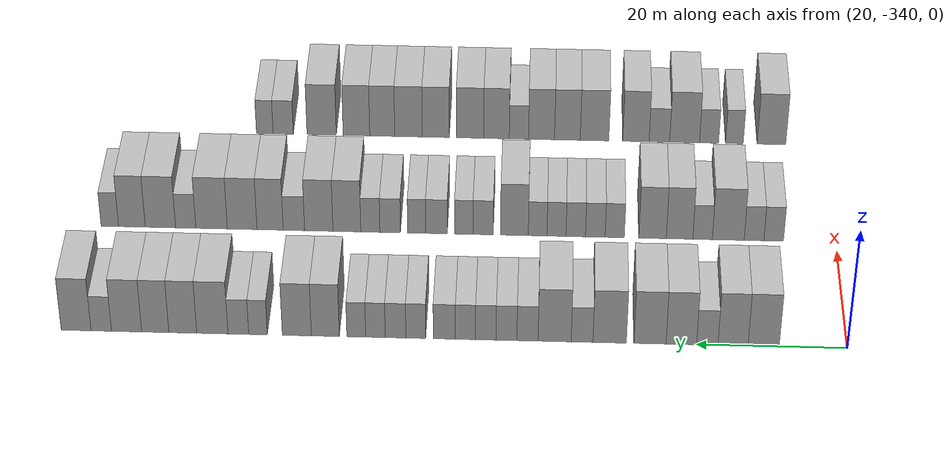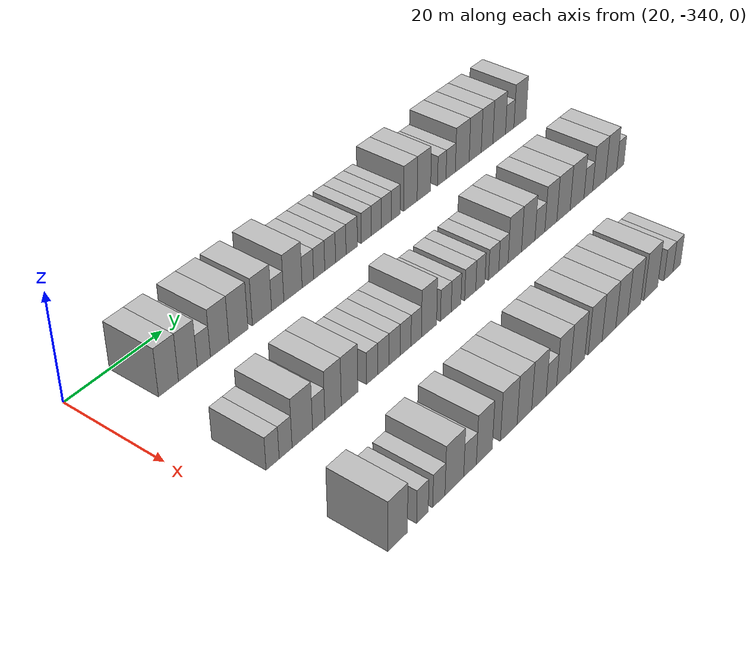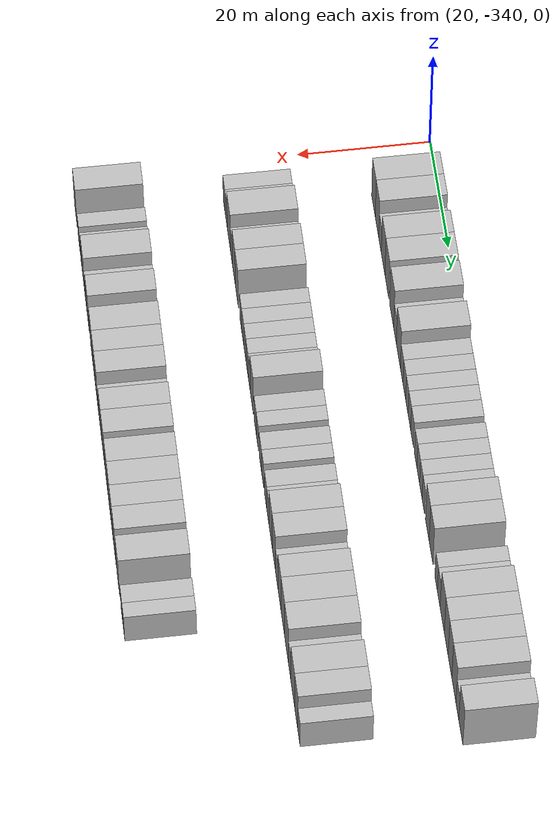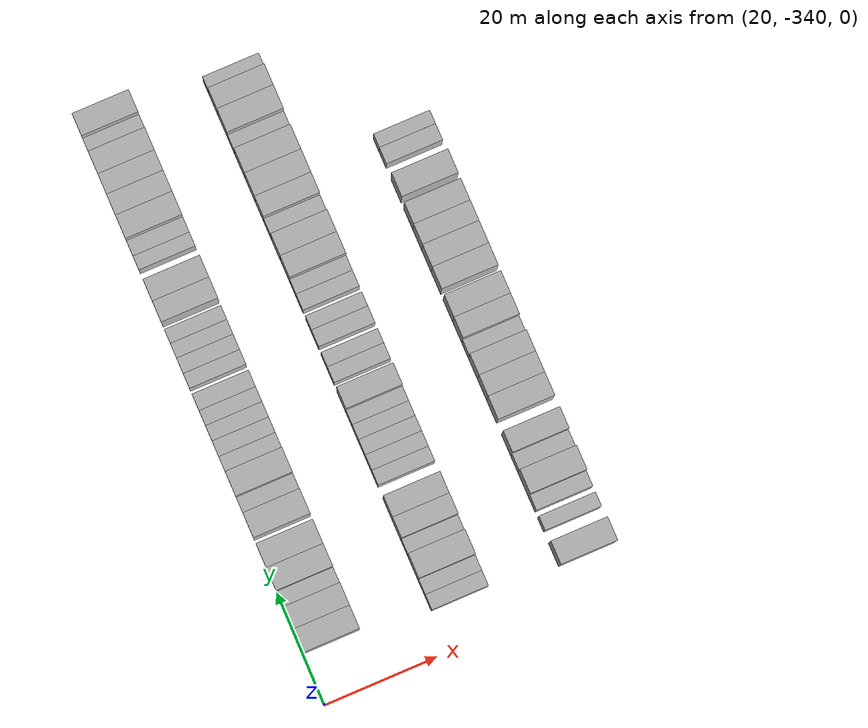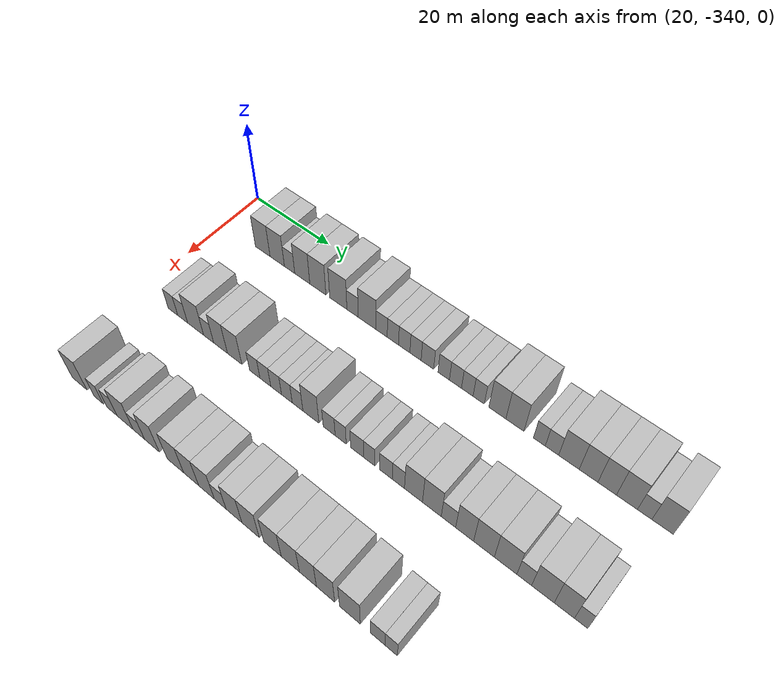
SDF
<sdf version="1.6">
 <world name="default">
  <model name="building_14">
   <static>1</static>
   <pose>25.0000 -328.9260 0 0.000000 0.000000 0.000000</pose>
   <link name="link">
    <pose>0 0 4.50 0 0 0</pose>
    <collision name="collision"><geometry><box><size>10.0000 4.1255 9.0000</size></box></geometry></collision>
    <visual name="visual">
     <cast_shadows>0</cast_shadows>
     <geometry><box><size>10.0000 4.1255 9.0000</size></box></geometry>
     <material>
      <script>
       <uri>model://HANNAS_wall/materials/scripts</uri>
       <uri>model://HANNAS_wall/materials/textures</uri>
       <name>vrc/HANNAS_wall</name>
      </script>
     </material>
    </visual>
   </link>
  </model>
  <model name="building_15">
   <static>1</static>
   <pose>25.0000 -324.8805 0 0.000000 0.000000 0.000000</pose>
   <link name="link">
    <pose>0 0 4.50 0 0 0</pose>
    <collision name="collision"><geometry><box><size>10.0000 3.9656 9.0000</size></box></geometry></collision>
    <visual name="visual">
     <cast_shadows>0</cast_shadows>
     <geometry><box><size>10.0000 3.9656 9.0000</size></box></geometry>
     <material>
      <script>
       <uri>model://HANNAS_wall/materials/scripts</uri>
       <uri>model://HANNAS_wall/materials/textures</uri>
       <name>vrc/HANNAS_wall</name>
      </script>
     </material>
    </visual>
   </link>
  </model>
  <model name="building_16">
   <static>1</static>
   <pose>25.0000 -321.4860 0 0.000000 0.000000 0.000000</pose>
   <link name="link">
    <pose>0 0 3.00 0 0 0</pose>
    <collision name="collision"><geometry><box><size>10.0000 2.8233 6.0000</size></box></geometry></collision>
    <visual name="visual">
     <cast_shadows>0</cast_shadows>
     <geometry><box><size>10.0000 2.8233 6.0000</size></box></geometry>
     <material>
      <script>
       <uri>model://HANNAS_wall/materials/scripts</uri>
       <uri>model://HANNAS_wall/materials/textures</uri>
       <name>vrc/HANNAS_wall</name>
      </script>
     </material>
    </visual>
   </link>
  </model>
  <model name="building_17">
   <static>1</static>
   <pose>25.0000 -318.0488 0 0.000000 0.000000 0.000000</pose>
   <link name="link">
    <pose>0 0 4.50 0 0 0</pose>
    <collision name="collision"><geometry><box><size>10.0000 4.0510 9.0000</size></box></geometry></collision>
    <visual name="visual">
     <cast_shadows>0</cast_shadows>
     <geometry><box><size>10.0000 4.0510 9.0000</size></box></geometry>
     <material>
      <script>
       <uri>model://HANNAS_wall/materials/scripts</uri>
       <uri>model://HANNAS_wall/materials/textures</uri>
       <name>vrc/HANNAS_wall</name>
      </script>
     </material>
    </visual>
   </link>
  </model>
  <model name="building_18">
   <static>1</static>
   <pose>25.0000 -313.8992 0 0.000000 0.000000 0.000000</pose>
   <link name="link">
    <pose>0 0 4.50 0 0 0</pose>
    <collision name="collision"><geometry><box><size>10.0000 4.2481 9.0000</size></box></geometry></collision>
    <visual name="visual">
     <cast_shadows>0</cast_shadows>
     <geometry><box><size>10.0000 4.2481 9.0000</size></box></geometry>
     <material>
      <script>
       <uri>model://HANNAS_wall/materials/scripts</uri>
       <uri>model://HANNAS_wall/materials/textures</uri>
       <name>vrc/HANNAS_wall</name>
      </script>
     </material>
    </visual>
   </link>
  </model>
  <model name="building_19">
   <static>1</static>
   <pose>25.0000 -308.5621 0 0.000000 0.000000 0.000000</pose>
   <link name="link">
    <pose>0 0 4.50 0 0 0</pose>
    <collision name="collision"><geometry><box><size>10.0000 4.4262 9.0000</size></box></geometry></collision>
    <visual name="visual">
     <cast_shadows>0</cast_shadows>
     <geometry><box><size>10.0000 4.4262 9.0000</size></box></geometry>
     <material>
      <script>
       <uri>model://HANNAS_wall/materials/scripts</uri>
       <uri>model://HANNAS_wall/materials/textures</uri>
       <name>vrc/HANNAS_wall</name>
      </script>
     </material>
    </visual>
   </link>
  </model>
  <model name="building_20">
   <static>1</static>
   <pose>25.0000 -304.9071 0 0.000000 0.000000 0.000000</pose>
   <link name="link">
    <pose>0 0 3.00 0 0 0</pose>
    <collision name="collision"><geometry><box><size>10.0000 2.8838 6.0000</size></box></geometry></collision>
    <visual name="visual">
     <cast_shadows>0</cast_shadows>
     <geometry><box><size>10.0000 2.8838 6.0000</size></box></geometry>
     <material>
      <script>
       <uri>model://HANNAS_wall/materials/scripts</uri>
       <uri>model://HANNAS_wall/materials/textures</uri>
       <name>vrc/HANNAS_wall</name>
      </script>
     </material>
    </visual>
   </link>
  </model>
  <model name="building_21">
   <static>1</static>
   <pose>25.0000 -301.2695 0 0.000000 0.000000 0.000000</pose>
   <link name="link">
    <pose>0 0 4.50 0 0 0</pose>
    <collision name="collision"><geometry><box><size>10.0000 4.3914 9.0000</size></box></geometry></collision>
    <visual name="visual">
     <cast_shadows>0</cast_shadows>
     <geometry><box><size>10.0000 4.3914 9.0000</size></box></geometry>
     <material>
      <script>
       <uri>model://HANNAS_wall/materials/scripts</uri>
       <uri>model://HANNAS_wall/materials/textures</uri>
       <name>vrc/HANNAS_wall</name>
      </script>
     </material>
    </visual>
   </link>
  </model>
  <model name="building_22">
   <static>1</static>
   <pose>25.0000 -297.6697 0 0.000000 0.000000 0.000000</pose>
   <link name="link">
    <pose>0 0 3.00 0 0 0</pose>
    <collision name="collision"><geometry><box><size>10.0000 2.8083 6.0000</size></box></geometry></collision>
    <visual name="visual">
     <cast_shadows>0</cast_shadows>
     <geometry><box><size>10.0000 2.8083 6.0000</size></box></geometry>
     <material>
      <script>
       <uri>model://HANNAS_wall/materials/scripts</uri>
       <uri>model://HANNAS_wall/materials/textures</uri>
       <name>vrc/HANNAS_wall</name>
      </script>
     </material>
    </visual>
   </link>
  </model>
  <model name="building_23">
   <static>1</static>
   <pose>25.0000 -294.8839 0 0.000000 0.000000 0.000000</pose>
   <link name="link">
    <pose>0 0 3.00 0 0 0</pose>
    <collision name="collision"><geometry><box><size>10.0000 2.7632 6.0000</size></box></geometry></collision>
    <visual name="visual">
     <cast_shadows>0</cast_shadows>
     <geometry><box><size>10.0000 2.7632 6.0000</size></box></geometry>
     <material>
      <script>
       <uri>model://HANNAS_wall/materials/scripts</uri>
       <uri>model://HANNAS_wall/materials/textures</uri>
       <name>vrc/HANNAS_wall</name>
      </script>
     </material>
    </visual>
   </link>
  </model>
  <model name="building_24">
   <static>1</static>
   <pose>25.0000 -292.1379 0 0.000000 0.000000 0.000000</pose>
   <link name="link">
    <pose>0 0 3.00 0 0 0</pose>
    <collision name="collision"><geometry><box><size>10.0000 2.7287 6.0000</size></box></geometry></collision>
    <visual name="visual">
     <cast_shadows>0</cast_shadows>
     <geometry><box><size>10.0000 2.7287 6.0000</size></box></geometry>
     <material>
      <script>
       <uri>model://HANNAS_wall/materials/scripts</uri>
       <uri>model://HANNAS_wall/materials/textures</uri>
       <name>vrc/HANNAS_wall</name>
      </script>
     </material>
    </visual>
   </link>
  </model>
  <model name="building_25">
   <static>1</static>
   <pose>25.0000 -289.4404 0 0.000000 0.000000 0.000000</pose>
   <link name="link">
    <pose>0 0 3.00 0 0 0</pose>
    <collision name="collision"><geometry><box><size>10.0000 2.6665 6.0000</size></box></geometry></collision>
    <visual name="visual">
     <cast_shadows>0</cast_shadows>
     <geometry><box><size>10.0000 2.6665 6.0000</size></box></geometry>
     <material>
      <script>
       <uri>model://HANNAS_wall/materials/scripts</uri>
       <uri>model://HANNAS_wall/materials/textures</uri>
       <name>vrc/HANNAS_wall</name>
      </script>
     </material>
    </visual>
   </link>
  </model>
  <model name="building_26">
   <static>1</static>
   <pose>25.0000 -286.6353 0 0.000000 0.000000 0.000000</pose>
   <link name="link">
    <pose>0 0 3.00 0 0 0</pose>
    <collision name="collision"><geometry><box><size>10.0000 2.9437 6.0000</size></box></geometry></collision>
    <visual name="visual">
     <cast_shadows>0</cast_shadows>
     <geometry><box><size>10.0000 2.9437 6.0000</size></box></geometry>
     <material>
      <script>
       <uri>model://HANNAS_wall/materials/scripts</uri>
       <uri>model://HANNAS_wall/materials/textures</uri>
       <name>vrc/HANNAS_wall</name>
      </script>
     </material>
    </visual>
   </link>
  </model>
  <model name="building_27">
   <static>1</static>
   <pose>25.0000 -282.8441 0 0.000000 0.000000 0.000000</pose>
   <link name="link">
    <pose>0 0 3.00 0 0 0</pose>
    <collision name="collision"><geometry><box><size>10.0000 2.6388 6.0000</size></box></geometry></collision>
    <visual name="visual">
     <cast_shadows>0</cast_shadows>
     <geometry><box><size>10.0000 2.6388 6.0000</size></box></geometry>
     <material>
      <script>
       <uri>model://HANNAS_wall/materials/scripts</uri>
       <uri>model://HANNAS_wall/materials/textures</uri>
       <name>vrc/HANNAS_wall</name>
      </script>
     </material>
    </visual>
   </link>
  </model>
  <model name="building_28">
   <static>1</static>
   <pose>25.0000 -280.1533 0 0.000000 0.000000 0.000000</pose>
   <link name="link">
    <pose>0 0 3.00 0 0 0</pose>
    <collision name="collision"><geometry><box><size>10.0000 2.7426 6.0000</size></box></geometry></collision>
    <visual name="visual">
     <cast_shadows>0</cast_shadows>
     <geometry><box><size>10.0000 2.7426 6.0000</size></box></geometry>
     <material>
      <script>
       <uri>model://HANNAS_wall/materials/scripts</uri>
       <uri>model://HANNAS_wall/materials/textures</uri>
       <name>vrc/HANNAS_wall</name>
      </script>
     </material>
    </visual>
   </link>
  </model>
  <model name="building_29">
   <static>1</static>
   <pose>25.0000 -277.4789 0 0.000000 0.000000 0.000000</pose>
   <link name="link">
    <pose>0 0 3.00 0 0 0</pose>
    <collision name="collision"><geometry><box><size>10.0000 2.6062 6.0000</size></box></geometry></collision>
    <visual name="visual">
     <cast_shadows>0</cast_shadows>
     <geometry><box><size>10.0000 2.6062 6.0000</size></box></geometry>
     <material>
      <script>
       <uri>model://HANNAS_wall/materials/scripts</uri>
       <uri>model://HANNAS_wall/materials/textures</uri>
       <name>vrc/HANNAS_wall</name>
      </script>
     </material>
    </visual>
   </link>
  </model>
  <model name="building_30">
   <static>1</static>
   <pose>25.0000 -274.9261 0 0.000000 0.000000 0.000000</pose>
   <link name="link">
    <pose>0 0 3.00 0 0 0</pose>
    <collision name="collision"><geometry><box><size>10.0000 2.4993 6.0000</size></box></geometry></collision>
    <visual name="visual">
     <cast_shadows>0</cast_shadows>
     <geometry><box><size>10.0000 2.4993 6.0000</size></box></geometry>
     <material>
      <script>
       <uri>model://HANNAS_wall/materials/scripts</uri>
       <uri>model://HANNAS_wall/materials/textures</uri>
       <name>vrc/HANNAS_wall</name>
      </script>
     </material>
    </visual>
   </link>
  </model>
  <model name="building_31">
   <static>1</static>
   <pose>25.0000 -270.8141 0 0.000000 0.000000 0.000000</pose>
   <link name="link">
    <pose>0 0 4.50 0 0 0</pose>
    <collision name="collision"><geometry><box><size>10.0000 3.7247 9.0000</size></box></geometry></collision>
    <visual name="visual">
     <cast_shadows>0</cast_shadows>
     <geometry><box><size>10.0000 3.7247 9.0000</size></box></geometry>
     <material>
      <script>
       <uri>model://HANNAS_wall/materials/scripts</uri>
       <uri>model://HANNAS_wall/materials/textures</uri>
       <name>vrc/HANNAS_wall</name>
      </script>
     </material>
    </visual>
   </link>
  </model>
  <model name="building_32">
   <static>1</static>
   <pose>25.0000 -267.0183 0 0.000000 0.000000 0.000000</pose>
   <link name="link">
    <pose>0 0 4.50 0 0 0</pose>
    <collision name="collision"><geometry><box><size>10.0000 3.8670 9.0000</size></box></geometry></collision>
    <visual name="visual">
     <cast_shadows>0</cast_shadows>
     <geometry><box><size>10.0000 3.8670 9.0000</size></box></geometry>
     <material>
      <script>
       <uri>model://HANNAS_wall/materials/scripts</uri>
       <uri>model://HANNAS_wall/materials/textures</uri>
       <name>vrc/HANNAS_wall</name>
      </script>
     </material>
    </visual>
   </link>
  </model>
  <model name="building_33">
   <static>1</static>
   <pose>25.0000 -261.8424 0 0.000000 0.000000 0.000000</pose>
   <link name="link">
    <pose>0 0 3.00 0 0 0</pose>
    <collision name="collision"><geometry><box><size>10.0000 2.4848 6.0000</size></box></geometry></collision>
    <visual name="visual">
     <cast_shadows>0</cast_shadows>
     <geometry><box><size>10.0000 2.4848 6.0000</size></box></geometry>
     <material>
      <script>
       <uri>model://HANNAS_wall/materials/scripts</uri>
       <uri>model://HANNAS_wall/materials/textures</uri>
       <name>vrc/HANNAS_wall</name>
      </script>
     </material>
    </visual>
   </link>
  </model>
  <model name="building_34">
   <static>1</static>
   <pose>25.0000 -259.2197 0 0.000000 0.000000 0.000000</pose>
   <link name="link">
    <pose>0 0 3.00 0 0 0</pose>
    <collision name="collision"><geometry><box><size>10.0000 2.7606 6.0000</size></box></geometry></collision>
    <visual name="visual">
     <cast_shadows>0</cast_shadows>
     <geometry><box><size>10.0000 2.7606 6.0000</size></box></geometry>
     <material>
      <script>
       <uri>model://HANNAS_wall/materials/scripts</uri>
       <uri>model://HANNAS_wall/materials/textures</uri>
       <name>vrc/HANNAS_wall</name>
      </script>
     </material>
    </visual>
   </link>
  </model>
  <model name="building_35">
   <static>1</static>
   <pose>25.0000 -255.7530 0 0.000000 0.000000 0.000000</pose>
   <link name="link">
    <pose>0 0 4.50 0 0 0</pose>
    <collision name="collision"><geometry><box><size>10.0000 4.1728 9.0000</size></box></geometry></collision>
    <visual name="visual">
     <cast_shadows>0</cast_shadows>
     <geometry><box><size>10.0000 4.1728 9.0000</size></box></geometry>
     <material>
      <script>
       <uri>model://HANNAS_wall/materials/scripts</uri>
       <uri>model://HANNAS_wall/materials/textures</uri>
       <name>vrc/HANNAS_wall</name>
      </script>
     </material>
    </visual>
   </link>
  </model>
  <model name="building_36">
   <static>1</static>
   <pose>25.0000 -251.8051 0 0.000000 0.000000 0.000000</pose>
   <link name="link">
    <pose>0 0 4.50 0 0 0</pose>
    <collision name="collision"><geometry><box><size>10.0000 3.7230 9.0000</size></box></geometry></collision>
    <visual name="visual">
     <cast_shadows>0</cast_shadows>
     <geometry><box><size>10.0000 3.7230 9.0000</size></box></geometry>
     <material>
      <script>
       <uri>model://HANNAS_wall/materials/scripts</uri>
       <uri>model://HANNAS_wall/materials/textures</uri>
       <name>vrc/HANNAS_wall</name>
      </script>
     </material>
    </visual>
   </link>
  </model>
  <model name="building_37">
   <static>1</static>
   <pose>25.0000 -248.1258 0 0.000000 0.000000 0.000000</pose>
   <link name="link">
    <pose>0 0 4.50 0 0 0</pose>
    <collision name="collision"><geometry><box><size>10.0000 3.6355 9.0000</size></box></geometry></collision>
    <visual name="visual">
     <cast_shadows>0</cast_shadows>
     <geometry><box><size>10.0000 3.6355 9.0000</size></box></geometry>
     <material>
      <script>
       <uri>model://HANNAS_wall/materials/scripts</uri>
       <uri>model://HANNAS_wall/materials/textures</uri>
       <name>vrc/HANNAS_wall</name>
      </script>
     </material>
    </visual>
   </link>
  </model>
  <model name="building_38">
   <static>1</static>
   <pose>25.0000 -244.2917 0 0.000000 0.000000 0.000000</pose>
   <link name="link">
    <pose>0 0 4.50 0 0 0</pose>
    <collision name="collision"><geometry><box><size>10.0000 4.0326 9.0000</size></box></geometry></collision>
    <visual name="visual">
     <cast_shadows>0</cast_shadows>
     <geometry><box><size>10.0000 4.0326 9.0000</size></box></geometry>
     <material>
      <script>
       <uri>model://HANNAS_wall/materials/scripts</uri>
       <uri>model://HANNAS_wall/materials/textures</uri>
       <name>vrc/HANNAS_wall</name>
      </script>
     </material>
    </visual>
   </link>
  </model>
  <model name="building_39">
   <static>1</static>
   <pose>25.0000 -240.9089 0 0.000000 0.000000 0.000000</pose>
   <link name="link">
    <pose>0 0 3.00 0 0 0</pose>
    <collision name="collision"><geometry><box><size>10.0000 2.7330 6.0000</size></box></geometry></collision>
    <visual name="visual">
     <cast_shadows>0</cast_shadows>
     <geometry><box><size>10.0000 2.7330 6.0000</size></box></geometry>
     <material>
      <script>
       <uri>model://HANNAS_wall/materials/scripts</uri>
       <uri>model://HANNAS_wall/materials/textures</uri>
       <name>vrc/HANNAS_wall</name>
      </script>
     </material>
    </visual>
   </link>
  </model>
  <model name="building_40">
   <static>1</static>
   <pose>25.0000 -237.5478 0 0.000000 0.000000 0.000000</pose>
   <link name="link">
    <pose>0 0 4.50 0 0 0</pose>
    <collision name="collision"><geometry><box><size>10.0000 3.9893 9.0000</size></box></geometry></collision>
    <visual name="visual">
     <cast_shadows>0</cast_shadows>
     <geometry><box><size>10.0000 3.9893 9.0000</size></box></geometry>
     <material>
      <script>
       <uri>model://HANNAS_wall/materials/scripts</uri>
       <uri>model://HANNAS_wall/materials/textures</uri>
       <name>vrc/HANNAS_wall</name>
      </script>
     </material>
    </visual>
   </link>
  </model>
  <model name="building_210">
   <static>1</static>
   <pose>47.0000 -331.4357 0 0.000000 0.000000 0.000000</pose>
   <link name="link">
    <pose>0 0 3.00 0 0 0</pose>
    <collision name="collision"><geometry><box><size>10.0000 2.7094 6.0000</size></box></geometry></collision>
    <visual name="visual">
     <cast_shadows>0</cast_shadows>
     <geometry><box><size>10.0000 2.7094 6.0000</size></box></geometry>
     <material>
      <script>
       <uri>model://HANNAS_wall/materials/scripts</uri>
       <uri>model://HANNAS_wall/materials/textures</uri>
       <name>vrc/HANNAS_wall</name>
      </script>
     </material>
    </visual>
   </link>
  </model>
  <model name="building_211">
   <static>1</static>
   <pose>47.0000 -328.7173 0 0.000000 0.000000 0.000000</pose>
   <link name="link">
    <pose>0 0 3.00 0 0 0</pose>
    <collision name="collision"><geometry><box><size>10.0000 2.7276 6.0000</size></box></geometry></collision>
    <visual name="visual">
     <cast_shadows>0</cast_shadows>
     <geometry><box><size>10.0000 2.7276 6.0000</size></box></geometry>
     <material>
      <script>
       <uri>model://HANNAS_wall/materials/scripts</uri>
       <uri>model://HANNAS_wall/materials/textures</uri>
       <name>vrc/HANNAS_wall</name>
      </script>
     </material>
    </visual>
   </link>
  </model>
  <model name="building_212">
   <static>1</static>
   <pose>47.0000 -325.1502 0 0.000000 0.000000 0.000000</pose>
   <link name="link">
    <pose>0 0 4.50 0 0 0</pose>
    <collision name="collision"><geometry><box><size>10.0000 4.4065 9.0000</size></box></geometry></collision>
    <visual name="visual">
     <cast_shadows>0</cast_shadows>
     <geometry><box><size>10.0000 4.4065 9.0000</size></box></geometry>
     <material>
      <script>
       <uri>model://HANNAS_wall/materials/scripts</uri>
       <uri>model://HANNAS_wall/materials/textures</uri>
       <name>vrc/HANNAS_wall</name>
      </script>
     </material>
    </visual>
   </link>
  </model>
  <model name="building_213">
   <static>1</static>
   <pose>47.0000 -321.5990 0 0.000000 0.000000 0.000000</pose>
   <link name="link">
    <pose>0 0 3.00 0 0 0</pose>
    <collision name="collision"><geometry><box><size>10.0000 2.6959 6.0000</size></box></geometry></collision>
    <visual name="visual">
     <cast_shadows>0</cast_shadows>
     <geometry><box><size>10.0000 2.6959 6.0000</size></box></geometry>
     <material>
      <script>
       <uri>model://HANNAS_wall/materials/scripts</uri>
       <uri>model://HANNAS_wall/materials/textures</uri>
       <name>vrc/HANNAS_wall</name>
      </script>
     </material>
    </visual>
   </link>
  </model>
  <model name="building_214">
   <static>1</static>
   <pose>47.0000 -318.4127 0 0.000000 0.000000 0.000000</pose>
   <link name="link">
    <pose>0 0 4.50 0 0 0</pose>
    <collision name="collision"><geometry><box><size>10.0000 3.6765 9.0000</size></box></geometry></collision>
    <visual name="visual">
     <cast_shadows>0</cast_shadows>
     <geometry><box><size>10.0000 3.6765 9.0000</size></box></geometry>
     <material>
      <script>
       <uri>model://HANNAS_wall/materials/scripts</uri>
       <uri>model://HANNAS_wall/materials/textures</uri>
       <name>vrc/HANNAS_wall</name>
      </script>
     </material>
    </visual>
   </link>
  </model>
  <model name="building_215">
   <static>1</static>
   <pose>47.0000 -314.6747 0 0.000000 0.000000 0.000000</pose>
   <link name="link">
    <pose>0 0 4.50 0 0 0</pose>
    <collision name="collision"><geometry><box><size>10.0000 3.7995 9.0000</size></box></geometry></collision>
    <visual name="visual">
     <cast_shadows>0</cast_shadows>
     <geometry><box><size>10.0000 3.7995 9.0000</size></box></geometry>
     <material>
      <script>
       <uri>model://HANNAS_wall/materials/scripts</uri>
       <uri>model://HANNAS_wall/materials/textures</uri>
       <name>vrc/HANNAS_wall</name>
      </script>
     </material>
    </visual>
   </link>
  </model>
  <model name="building_216">
   <static>1</static>
   <pose>47.0000 -309.4443 0 0.000000 0.000000 0.000000</pose>
   <link name="link">
    <pose>0 0 3.00 0 0 0</pose>
    <collision name="collision"><geometry><box><size>10.0000 2.6614 6.0000</size></box></geometry></collision>
    <visual name="visual">
     <cast_shadows>0</cast_shadows>
     <geometry><box><size>10.0000 2.6614 6.0000</size></box></geometry>
     <material>
      <script>
       <uri>model://HANNAS_wall/materials/scripts</uri>
       <uri>model://HANNAS_wall/materials/textures</uri>
       <name>vrc/HANNAS_wall</name>
      </script>
     </material>
    </visual>
   </link>
  </model>
  <model name="building_217">
   <static>1</static>
   <pose>47.0000 -306.7528 0 0.000000 0.000000 0.000000</pose>
   <link name="link">
    <pose>0 0 3.00 0 0 0</pose>
    <collision name="collision"><geometry><box><size>10.0000 2.7215 6.0000</size></box></geometry></collision>
    <visual name="visual">
     <cast_shadows>0</cast_shadows>
     <geometry><box><size>10.0000 2.7215 6.0000</size></box></geometry>
     <material>
      <script>
       <uri>model://HANNAS_wall/materials/scripts</uri>
       <uri>model://HANNAS_wall/materials/textures</uri>
       <name>vrc/HANNAS_wall</name>
      </script>
     </material>
    </visual>
   </link>
  </model>
  <model name="building_218">
   <static>1</static>
   <pose>47.0000 -304.0382 0 0.000000 0.000000 0.000000</pose>
   <link name="link">
    <pose>0 0 3.00 0 0 0</pose>
    <collision name="collision"><geometry><box><size>10.0000 2.7077 6.0000</size></box></geometry></collision>
    <visual name="visual">
     <cast_shadows>0</cast_shadows>
     <geometry><box><size>10.0000 2.7077 6.0000</size></box></geometry>
     <material>
      <script>
       <uri>model://HANNAS_wall/materials/scripts</uri>
       <uri>model://HANNAS_wall/materials/textures</uri>
       <name>vrc/HANNAS_wall</name>
      </script>
     </material>
    </visual>
   </link>
  </model>
  <model name="building_219">
   <static>1</static>
   <pose>47.0000 -301.3656 0 0.000000 0.000000 0.000000</pose>
   <link name="link">
    <pose>0 0 3.00 0 0 0</pose>
    <collision name="collision"><geometry><box><size>10.0000 2.6374 6.0000</size></box></geometry></collision>
    <visual name="visual">
     <cast_shadows>0</cast_shadows>
     <geometry><box><size>10.0000 2.6374 6.0000</size></box></geometry>
     <material>
      <script>
       <uri>model://HANNAS_wall/materials/scripts</uri>
       <uri>model://HANNAS_wall/materials/textures</uri>
       <name>vrc/HANNAS_wall</name>
      </script>
     </material>
    </visual>
   </link>
  </model>
  <model name="building_220">
   <static>1</static>
   <pose>47.0000 -298.7498 0 0.000000 0.000000 0.000000</pose>
   <link name="link">
    <pose>0 0 3.00 0 0 0</pose>
    <collision name="collision"><geometry><box><size>10.0000 2.5943 6.0000</size></box></geometry></collision>
    <visual name="visual">
     <cast_shadows>0</cast_shadows>
     <geometry><box><size>10.0000 2.5943 6.0000</size></box></geometry>
     <material>
      <script>
       <uri>model://HANNAS_wall/materials/scripts</uri>
       <uri>model://HANNAS_wall/materials/textures</uri>
       <name>vrc/HANNAS_wall</name>
      </script>
     </material>
    </visual>
   </link>
  </model>
  <model name="building_221">
   <static>1</static>
   <pose>47.0000 -295.5214 0 0.000000 0.000000 0.000000</pose>
   <link name="link">
    <pose>0 0 4.50 0 0 0</pose>
    <collision name="collision"><geometry><box><size>10.0000 3.8626 9.0000</size></box></geometry></collision>
    <visual name="visual">
     <cast_shadows>0</cast_shadows>
     <geometry><box><size>10.0000 3.8626 9.0000</size></box></geometry>
     <material>
      <script>
       <uri>model://HANNAS_wall/materials/scripts</uri>
       <uri>model://HANNAS_wall/materials/textures</uri>
       <name>vrc/HANNAS_wall</name>
      </script>
     </material>
    </visual>
   </link>
  </model>
  <model name="building_222">
   <static>1</static>
   <pose>47.0000 -291.1821 0 0.000000 0.000000 0.000000</pose>
   <link name="link">
    <pose>0 0 3.00 0 0 0</pose>
    <collision name="collision"><geometry><box><size>10.0000 2.8158 6.0000</size></box></geometry></collision>
    <visual name="visual">
     <cast_shadows>0</cast_shadows>
     <geometry><box><size>10.0000 2.8158 6.0000</size></box></geometry>
     <material>
      <script>
       <uri>model://HANNAS_wall/materials/scripts</uri>
       <uri>model://HANNAS_wall/materials/textures</uri>
       <name>vrc/HANNAS_wall</name>
      </script>
     </material>
    </visual>
   </link>
  </model>
  <model name="building_223">
   <static>1</static>
   <pose>47.0000 -288.4922 0 0.000000 0.000000 0.000000</pose>
   <link name="link">
    <pose>0 0 3.00 0 0 0</pose>
    <collision name="collision"><geometry><box><size>10.0000 2.5641 6.0000</size></box></geometry></collision>
    <visual name="visual">
     <cast_shadows>0</cast_shadows>
     <geometry><box><size>10.0000 2.5641 6.0000</size></box></geometry>
     <material>
      <script>
       <uri>model://HANNAS_wall/materials/scripts</uri>
       <uri>model://HANNAS_wall/materials/textures</uri>
       <name>vrc/HANNAS_wall</name>
      </script>
     </material>
    </visual>
   </link>
  </model>
  <model name="building_224">
   <static>1</static>
   <pose>47.0000 -284.7108 0 0.000000 0.000000 0.000000</pose>
   <link name="link">
    <pose>0 0 3.00 0 0 0</pose>
    <collision name="collision"><geometry><box><size>10.0000 2.9986 6.0000</size></box></geometry></collision>
    <visual name="visual">
     <cast_shadows>0</cast_shadows>
     <geometry><box><size>10.0000 2.9986 6.0000</size></box></geometry>
     <material>
      <script>
       <uri>model://HANNAS_wall/materials/scripts</uri>
       <uri>model://HANNAS_wall/materials/textures</uri>
       <name>vrc/HANNAS_wall</name>
      </script>
     </material>
    </visual>
   </link>
  </model>
  <model name="building_225">
   <static>1</static>
   <pose>47.0000 -281.9559 0 0.000000 0.000000 0.000000</pose>
   <link name="link">
    <pose>0 0 3.00 0 0 0</pose>
    <collision name="collision"><geometry><box><size>10.0000 2.5112 6.0000</size></box></geometry></collision>
    <visual name="visual">
     <cast_shadows>0</cast_shadows>
     <geometry><box><size>10.0000 2.5112 6.0000</size></box></geometry>
     <material>
      <script>
       <uri>model://HANNAS_wall/materials/scripts</uri>
       <uri>model://HANNAS_wall/materials/textures</uri>
       <name>vrc/HANNAS_wall</name>
      </script>
     </material>
    </visual>
   </link>
  </model>
  <model name="building_226">
   <static>1</static>
   <pose>47.0000 -278.2670 0 0.000000 0.000000 0.000000</pose>
   <link name="link">
    <pose>0 0 3.00 0 0 0</pose>
    <collision name="collision"><geometry><box><size>10.0000 2.8667 6.0000</size></box></geometry></collision>
    <visual name="visual">
     <cast_shadows>0</cast_shadows>
     <geometry><box><size>10.0000 2.8667 6.0000</size></box></geometry>
     <material>
      <script>
       <uri>model://HANNAS_wall/materials/scripts</uri>
       <uri>model://HANNAS_wall/materials/textures</uri>
       <name>vrc/HANNAS_wall</name>
      </script>
     </material>
    </visual>
   </link>
  </model>
  <model name="building_227">
   <static>1</static>
   <pose>47.0000 -275.5086 0 0.000000 0.000000 0.000000</pose>
   <link name="link">
    <pose>0 0 3.00 0 0 0</pose>
    <collision name="collision"><geometry><box><size>10.0000 2.6500 6.0000</size></box></geometry></collision>
    <visual name="visual">
     <cast_shadows>0</cast_shadows>
     <geometry><box><size>10.0000 2.6500 6.0000</size></box></geometry>
     <material>
      <script>
       <uri>model://HANNAS_wall/materials/scripts</uri>
       <uri>model://HANNAS_wall/materials/textures</uri>
       <name>vrc/HANNAS_wall</name>
      </script>
     </material>
    </visual>
   </link>
  </model>
  <model name="building_228">
   <static>1</static>
   <pose>47.0000 -272.2478 0 0.000000 0.000000 0.000000</pose>
   <link name="link">
    <pose>0 0 4.50 0 0 0</pose>
    <collision name="collision"><geometry><box><size>10.0000 3.8716 9.0000</size></box></geometry></collision>
    <visual name="visual">
     <cast_shadows>0</cast_shadows>
     <geometry><box><size>10.0000 3.8716 9.0000</size></box></geometry>
     <material>
      <script>
       <uri>model://HANNAS_wall/materials/scripts</uri>
       <uri>model://HANNAS_wall/materials/textures</uri>
       <name>vrc/HANNAS_wall</name>
      </script>
     </material>
    </visual>
   </link>
  </model>
  <model name="building_229">
   <static>1</static>
   <pose>47.0000 -268.3368 0 0.000000 0.000000 0.000000</pose>
   <link name="link">
    <pose>0 0 4.50 0 0 0</pose>
    <collision name="collision"><geometry><box><size>10.0000 3.9504 9.0000</size></box></geometry></collision>
    <visual name="visual">
     <cast_shadows>0</cast_shadows>
     <geometry><box><size>10.0000 3.9504 9.0000</size></box></geometry>
     <material>
      <script>
       <uri>model://HANNAS_wall/materials/scripts</uri>
       <uri>model://HANNAS_wall/materials/textures</uri>
       <name>vrc/HANNAS_wall</name>
      </script>
     </material>
    </visual>
   </link>
  </model>
  <model name="building_230">
   <static>1</static>
   <pose>47.0000 -264.8716 0 0.000000 0.000000 0.000000</pose>
   <link name="link">
    <pose>0 0 3.00 0 0 0</pose>
    <collision name="collision"><geometry><box><size>10.0000 2.9799 6.0000</size></box></geometry></collision>
    <visual name="visual">
     <cast_shadows>0</cast_shadows>
     <geometry><box><size>10.0000 2.9799 6.0000</size></box></geometry>
     <material>
      <script>
       <uri>model://HANNAS_wall/materials/scripts</uri>
       <uri>model://HANNAS_wall/materials/textures</uri>
       <name>vrc/HANNAS_wall</name>
      </script>
     </material>
    </visual>
   </link>
  </model>
  <model name="building_231">
   <static>1</static>
   <pose>47.0000 -261.5500 0 0.000000 0.000000 0.000000</pose>
   <link name="link">
    <pose>0 0 4.50 0 0 0</pose>
    <collision name="collision"><geometry><box><size>10.0000 3.6633 9.0000</size></box></geometry></collision>
    <visual name="visual">
     <cast_shadows>0</cast_shadows>
     <geometry><box><size>10.0000 3.6633 9.0000</size></box></geometry>
     <material>
      <script>
       <uri>model://HANNAS_wall/materials/scripts</uri>
       <uri>model://HANNAS_wall/materials/textures</uri>
       <name>vrc/HANNAS_wall</name>
      </script>
     </material>
    </visual>
   </link>
  </model>
  <model name="building_232">
   <static>1</static>
   <pose>47.0000 -257.6503 0 0.000000 0.000000 0.000000</pose>
   <link name="link">
    <pose>0 0 4.50 0 0 0</pose>
    <collision name="collision"><geometry><box><size>10.0000 4.1362 9.0000</size></box></geometry></collision>
    <visual name="visual">
     <cast_shadows>0</cast_shadows>
     <geometry><box><size>10.0000 4.1362 9.0000</size></box></geometry>
     <material>
      <script>
       <uri>model://HANNAS_wall/materials/scripts</uri>
       <uri>model://HANNAS_wall/materials/textures</uri>
       <name>vrc/HANNAS_wall</name>
      </script>
     </material>
    </visual>
   </link>
  </model>
  <model name="building_233">
   <static>1</static>
   <pose>47.0000 -253.3803 0 0.000000 0.000000 0.000000</pose>
   <link name="link">
    <pose>0 0 4.50 0 0 0</pose>
    <collision name="collision"><geometry><box><size>10.0000 4.4040 9.0000</size></box></geometry></collision>
    <visual name="visual">
     <cast_shadows>0</cast_shadows>
     <geometry><box><size>10.0000 4.4040 9.0000</size></box></geometry>
     <material>
      <script>
       <uri>model://HANNAS_wall/materials/scripts</uri>
       <uri>model://HANNAS_wall/materials/textures</uri>
       <name>vrc/HANNAS_wall</name>
      </script>
     </material>
    </visual>
   </link>
  </model>
  <model name="building_234">
   <static>1</static>
   <pose>47.0000 -249.7667 0 0.000000 0.000000 0.000000</pose>
   <link name="link">
    <pose>0 0 3.00 0 0 0</pose>
    <collision name="collision"><geometry><box><size>10.0000 2.8231 6.0000</size></box></geometry></collision>
    <visual name="visual">
     <cast_shadows>0</cast_shadows>
     <geometry><box><size>10.0000 2.8231 6.0000</size></box></geometry>
     <material>
      <script>
       <uri>model://HANNAS_wall/materials/scripts</uri>
       <uri>model://HANNAS_wall/materials/textures</uri>
       <name>vrc/HANNAS_wall</name>
      </script>
     </material>
    </visual>
   </link>
  </model>
  <model name="building_235">
   <static>1</static>
   <pose>47.0000 -246.2337 0 0.000000 0.000000 0.000000</pose>
   <link name="link">
    <pose>0 0 4.50 0 0 0</pose>
    <collision name="collision"><geometry><box><size>10.0000 4.2429 9.0000</size></box></geometry></collision>
    <visual name="visual">
     <cast_shadows>0</cast_shadows>
     <geometry><box><size>10.0000 4.2429 9.0000</size></box></geometry>
     <material>
      <script>
       <uri>model://HANNAS_wall/materials/scripts</uri>
       <uri>model://HANNAS_wall/materials/textures</uri>
       <name>vrc/HANNAS_wall</name>
      </script>
     </material>
    </visual>
   </link>
  </model>
  <model name="building_236">
   <static>1</static>
   <pose>47.0000 -242.2460 0 0.000000 0.000000 0.000000</pose>
   <link name="link">
    <pose>0 0 4.50 0 0 0</pose>
    <collision name="collision"><geometry><box><size>10.0000 3.7327 9.0000</size></box></geometry></collision>
    <visual name="visual">
     <cast_shadows>0</cast_shadows>
     <geometry><box><size>10.0000 3.7327 9.0000</size></box></geometry>
     <material>
      <script>
       <uri>model://HANNAS_wall/materials/scripts</uri>
       <uri>model://HANNAS_wall/materials/textures</uri>
       <name>vrc/HANNAS_wall</name>
      </script>
     </material>
    </visual>
   </link>
  </model>
  <model name="building_237">
   <static>1</static>
   <pose>47.0000 -239.1651 0 0.000000 0.000000 0.000000</pose>
   <link name="link">
    <pose>0 0 3.00 0 0 0</pose>
    <collision name="collision"><geometry><box><size>10.0000 2.4291 6.0000</size></box></geometry></collision>
    <visual name="visual">
     <cast_shadows>0</cast_shadows>
     <geometry><box><size>10.0000 2.4291 6.0000</size></box></geometry>
     <material>
      <script>
       <uri>model://HANNAS_wall/materials/scripts</uri>
       <uri>model://HANNAS_wall/materials/textures</uri>
       <name>vrc/HANNAS_wall</name>
      </script>
     </material>
    </visual>
   </link>
  </model>
  <model name="building_397">
   <static>1</static>
   <pose>69.0000 -332.2826 0 0.000000 0.000000 0.000000</pose>
   <link name="link">
    <pose>0 0 4.50 0 0 0</pose>
    <collision name="collision"><geometry><box><size>10.0000 4.1308 9.0000</size></box></geometry></collision>
    <visual name="visual">
     <cast_shadows>0</cast_shadows>
     <geometry><box><size>10.0000 4.1308 9.0000</size></box></geometry>
     <material>
      <script>
       <uri>model://HANNAS_wall/materials/scripts</uri>
       <uri>model://HANNAS_wall/materials/textures</uri>
       <name>vrc/HANNAS_wall</name>
      </script>
     </material>
    </visual>
   </link>
  </model>
  <model name="building_398">
   <static>1</static>
   <pose>69.0000 -326.9394 0 0.000000 0.000000 0.000000</pose>
   <link name="link">
    <pose>0 0 3.00 0 0 0</pose>
    <collision name="collision"><geometry><box><size>10.0000 2.5555 6.0000</size></box></geometry></collision>
    <visual name="visual">
     <cast_shadows>0</cast_shadows>
     <geometry><box><size>10.0000 2.5555 6.0000</size></box></geometry>
     <material>
      <script>
       <uri>model://HANNAS_wall/materials/scripts</uri>
       <uri>model://HANNAS_wall/materials/textures</uri>
       <name>vrc/HANNAS_wall</name>
      </script>
     </material>
    </visual>
   </link>
  </model>
  <model name="building_399">
   <static>1</static>
   <pose>69.0000 -323.2837 0 0.000000 0.000000 0.000000</pose>
   <link name="link">
    <pose>0 0 3.00 0 0 0</pose>
    <collision name="collision"><geometry><box><size>10.0000 2.7557 6.0000</size></box></geometry></collision>
    <visual name="visual">
     <cast_shadows>0</cast_shadows>
     <geometry><box><size>10.0000 2.7557 6.0000</size></box></geometry>
     <material>
      <script>
       <uri>model://HANNAS_wall/materials/scripts</uri>
       <uri>model://HANNAS_wall/materials/textures</uri>
       <name>vrc/HANNAS_wall</name>
      </script>
     </material>
    </visual>
   </link>
  </model>
  <model name="building_400">
   <static>1</static>
   <pose>69.0000 -319.7501 0 0.000000 0.000000 0.000000</pose>
   <link name="link">
    <pose>0 0 4.50 0 0 0</pose>
    <collision name="collision"><geometry><box><size>10.0000 4.3115 9.0000</size></box></geometry></collision>
    <visual name="visual">
     <cast_shadows>0</cast_shadows>
     <geometry><box><size>10.0000 4.3115 9.0000</size></box></geometry>
     <material>
      <script>
       <uri>model://HANNAS_wall/materials/scripts</uri>
       <uri>model://HANNAS_wall/materials/textures</uri>
       <name>vrc/HANNAS_wall</name>
      </script>
     </material>
    </visual>
   </link>
  </model>
  <model name="building_401">
   <static>1</static>
   <pose>69.0000 -316.1072 0 0.000000 0.000000 0.000000</pose>
   <link name="link">
    <pose>0 0 3.00 0 0 0</pose>
    <collision name="collision"><geometry><box><size>10.0000 2.9743 6.0000</size></box></geometry></collision>
    <visual name="visual">
     <cast_shadows>0</cast_shadows>
     <geometry><box><size>10.0000 2.9743 6.0000</size></box></geometry>
     <material>
      <script>
       <uri>model://HANNAS_wall/materials/scripts</uri>
       <uri>model://HANNAS_wall/materials/textures</uri>
       <name>vrc/HANNAS_wall</name>
      </script>
     </material>
    </visual>
   </link>
  </model>
  <model name="building_402">
   <static>1</static>
   <pose>69.0000 -312.7097 0 0.000000 0.000000 0.000000</pose>
   <link name="link">
    <pose>0 0 4.50 0 0 0</pose>
    <collision name="collision"><geometry><box><size>10.0000 3.8206 9.0000</size></box></geometry></collision>
    <visual name="visual">
     <cast_shadows>0</cast_shadows>
     <geometry><box><size>10.0000 3.8206 9.0000</size></box></geometry>
     <material>
      <script>
       <uri>model://HANNAS_wall/materials/scripts</uri>
       <uri>model://HANNAS_wall/materials/textures</uri>
       <name>vrc/HANNAS_wall</name>
      </script>
     </material>
    </visual>
   </link>
  </model>
  <model name="building_403">
   <static>1</static>
   <pose>69.0000 -306.7267 0 0.000000 0.000000 0.000000</pose>
   <link name="link">
    <pose>0 0 4.50 0 0 0</pose>
    <collision name="collision"><geometry><box><size>10.0000 4.1453 9.0000</size></box></geometry></collision>
    <visual name="visual">
     <cast_shadows>0</cast_shadows>
     <geometry><box><size>10.0000 4.1453 9.0000</size></box></geometry>
     <material>
      <script>
       <uri>model://HANNAS_wall/materials/scripts</uri>
       <uri>model://HANNAS_wall/materials/textures</uri>
       <name>vrc/HANNAS_wall</name>
      </script>
     </material>
    </visual>
   </link>
  </model>
  <model name="building_404">
   <static>1</static>
   <pose>69.0000 -302.7971 0 0.000000 0.000000 0.000000</pose>
   <link name="link">
    <pose>0 0 4.50 0 0 0</pose>
    <collision name="collision"><geometry><box><size>10.0000 3.7140 9.0000</size></box></geometry></collision>
    <visual name="visual">
     <cast_shadows>0</cast_shadows>
     <geometry><box><size>10.0000 3.7140 9.0000</size></box></geometry>
     <material>
      <script>
       <uri>model://HANNAS_wall/materials/scripts</uri>
       <uri>model://HANNAS_wall/materials/textures</uri>
       <name>vrc/HANNAS_wall</name>
      </script>
     </material>
    </visual>
   </link>
  </model>
  <model name="building_405">
   <static>1</static>
   <pose>69.0000 -299.0490 0 0.000000 0.000000 0.000000</pose>
   <link name="link">
    <pose>0 0 4.50 0 0 0</pose>
    <collision name="collision"><geometry><box><size>10.0000 3.7822 9.0000</size></box></geometry></collision>
    <visual name="visual">
     <cast_shadows>0</cast_shadows>
     <geometry><box><size>10.0000 3.7822 9.0000</size></box></geometry>
     <material>
      <script>
       <uri>model://HANNAS_wall/materials/scripts</uri>
       <uri>model://HANNAS_wall/materials/textures</uri>
       <name>vrc/HANNAS_wall</name>
      </script>
     </material>
    </visual>
   </link>
  </model>
  <model name="building_406">
   <static>1</static>
   <pose>69.0000 -295.7700 0 0.000000 0.000000 0.000000</pose>
   <link name="link">
    <pose>0 0 3.00 0 0 0</pose>
    <collision name="collision"><geometry><box><size>10.0000 2.7757 6.0000</size></box></geometry></collision>
    <visual name="visual">
     <cast_shadows>0</cast_shadows>
     <geometry><box><size>10.0000 2.7757 6.0000</size></box></geometry>
     <material>
      <script>
       <uri>model://HANNAS_wall/materials/scripts</uri>
       <uri>model://HANNAS_wall/materials/textures</uri>
       <name>vrc/HANNAS_wall</name>
      </script>
     </material>
    </visual>
   </link>
  </model>
  <model name="building_407">
   <static>1</static>
   <pose>69.0000 -292.5288 0 0.000000 0.000000 0.000000</pose>
   <link name="link">
    <pose>0 0 4.50 0 0 0</pose>
    <collision name="collision"><geometry><box><size>10.0000 3.7066 9.0000</size></box></geometry></collision>
    <visual name="visual">
     <cast_shadows>0</cast_shadows>
     <geometry><box><size>10.0000 3.7066 9.0000</size></box></geometry>
     <material>
      <script>
       <uri>model://HANNAS_wall/materials/scripts</uri>
       <uri>model://HANNAS_wall/materials/textures</uri>
       <name>vrc/HANNAS_wall</name>
      </script>
     </material>
    </visual>
   </link>
  </model>
  <model name="building_408">
   <static>1</static>
   <pose>69.0000 -288.6839 0 0.000000 0.000000 0.000000</pose>
   <link name="link">
    <pose>0 0 4.50 0 0 0</pose>
    <collision name="collision"><geometry><box><size>10.0000 3.9831 9.0000</size></box></geometry></collision>
    <visual name="visual">
     <cast_shadows>0</cast_shadows>
     <geometry><box><size>10.0000 3.9831 9.0000</size></box></geometry>
     <material>
      <script>
       <uri>model://HANNAS_wall/materials/scripts</uri>
       <uri>model://HANNAS_wall/materials/textures</uri>
       <name>vrc/HANNAS_wall</name>
      </script>
     </material>
    </visual>
   </link>
  </model>
  <model name="building_409">
   <static>1</static>
   <pose>69.0000 -283.7282 0 0.000000 0.000000 0.000000</pose>
   <link name="link">
    <pose>0 0 4.50 0 0 0</pose>
    <collision name="collision"><geometry><box><size>10.0000 3.9282 9.0000</size></box></geometry></collision>
    <visual name="visual">
     <cast_shadows>0</cast_shadows>
     <geometry><box><size>10.0000 3.9282 9.0000</size></box></geometry>
     <material>
      <script>
       <uri>model://HANNAS_wall/materials/scripts</uri>
       <uri>model://HANNAS_wall/materials/textures</uri>
       <name>vrc/HANNAS_wall</name>
      </script>
     </material>
    </visual>
   </link>
  </model>
  <model name="building_410">
   <static>1</static>
   <pose>69.0000 -279.7684 0 0.000000 0.000000 0.000000</pose>
   <link name="link">
    <pose>0 0 4.50 0 0 0</pose>
    <collision name="collision"><geometry><box><size>10.0000 3.9916 9.0000</size></box></geometry></collision>
    <visual name="visual">
     <cast_shadows>0</cast_shadows>
     <geometry><box><size>10.0000 3.9916 9.0000</size></box></geometry>
     <material>
      <script>
       <uri>model://HANNAS_wall/materials/scripts</uri>
       <uri>model://HANNAS_wall/materials/textures</uri>
       <name>vrc/HANNAS_wall</name>
      </script>
     </material>
    </visual>
   </link>
  </model>
  <model name="building_411">
   <static>1</static>
   <pose>69.0000 -275.9560 0 0.000000 0.000000 0.000000</pose>
   <link name="link">
    <pose>0 0 4.50 0 0 0</pose>
    <collision name="collision"><geometry><box><size>10.0000 3.6331 9.0000</size></box></geometry></collision>
    <visual name="visual">
     <cast_shadows>0</cast_shadows>
     <geometry><box><size>10.0000 3.6331 9.0000</size></box></geometry>
     <material>
      <script>
       <uri>model://HANNAS_wall/materials/scripts</uri>
       <uri>model://HANNAS_wall/materials/textures</uri>
       <name>vrc/HANNAS_wall</name>
      </script>
     </material>
    </visual>
   </link>
  </model>
  <model name="building_412">
   <static>1</static>
   <pose>69.0000 -272.2073 0 0.000000 0.000000 0.000000</pose>
   <link name="link">
    <pose>0 0 4.50 0 0 0</pose>
    <collision name="collision"><geometry><box><size>10.0000 3.8644 9.0000</size></box></geometry></collision>
    <visual name="visual">
     <cast_shadows>0</cast_shadows>
     <geometry><box><size>10.0000 3.8644 9.0000</size></box></geometry>
     <material>
      <script>
       <uri>model://HANNAS_wall/materials/scripts</uri>
       <uri>model://HANNAS_wall/materials/textures</uri>
       <name>vrc/HANNAS_wall</name>
      </script>
     </material>
    </visual>
   </link>
  </model>
  <model name="building_413">
   <static>1</static>
   <pose>69.0000 -267.1493 0 0.000000 0.000000 0.000000</pose>
   <link name="link">
    <pose>0 0 4.50 0 0 0</pose>
    <collision name="collision"><geometry><box><size>10.0000 4.2516 9.0000</size></box></geometry></collision>
    <visual name="visual">
     <cast_shadows>0</cast_shadows>
     <geometry><box><size>10.0000 4.2516 9.0000</size></box></geometry>
     <material>
      <script>
       <uri>model://HANNAS_wall/materials/scripts</uri>
       <uri>model://HANNAS_wall/materials/textures</uri>
       <name>vrc/HANNAS_wall</name>
      </script>
     </material>
    </visual>
   </link>
  </model>
  <model name="building_414">
   <static>1</static>
   <pose>69.0000 -261.5511 0 0.000000 0.000000 0.000000</pose>
   <link name="link">
    <pose>0 0 3.00 0 0 0</pose>
    <collision name="collision"><geometry><box><size>10.0000 2.9448 6.0000</size></box></geometry></collision>
    <visual name="visual">
     <cast_shadows>0</cast_shadows>
     <geometry><box><size>10.0000 2.9448 6.0000</size></box></geometry>
     <material>
      <script>
       <uri>model://HANNAS_wall/materials/scripts</uri>
       <uri>model://HANNAS_wall/materials/textures</uri>
       <name>vrc/HANNAS_wall</name>
      </script>
     </material>
    </visual>
   </link>
  </model>
  <model name="building_415">
   <static>1</static>
   <pose>69.0000 -258.8731 0 0.000000 0.000000 0.000000</pose>
   <link name="link">
    <pose>0 0 3.00 0 0 0</pose>
    <collision name="collision"><geometry><box><size>10.0000 2.4111 6.0000</size></box></geometry></collision>
    <visual name="visual">
     <cast_shadows>0</cast_shadows>
     <geometry><box><size>10.0000 2.4111 6.0000</size></box></geometry>
     <material>
      <script>
       <uri>model://HANNAS_wall/materials/scripts</uri>
       <uri>model://HANNAS_wall/materials/textures</uri>
       <name>vrc/HANNAS_wall</name>
      </script>
     </material>
    </visual>
   </link>
  </model>
 </world>
</sdf>
